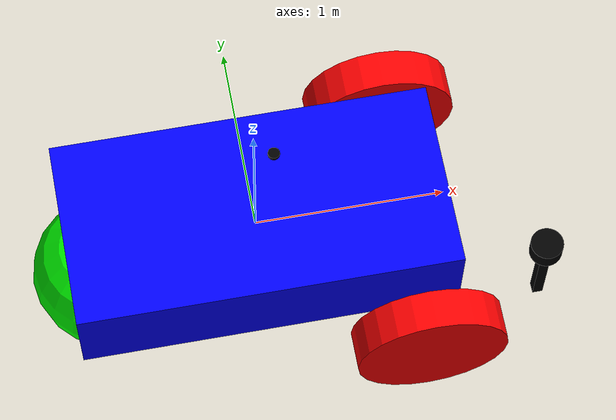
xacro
<?xml version="1.0"?>
<robot xmlns:xacro="http://www.ros.org/wiki/xacro"  name="robot">
    <material name="black">
         <color rgba="0 0 0 1"/>
    </material>

    <xacro:arg name="use_ros2_control" default="true"/>

    <xacro:include filename="building_robot.xacro" />

    <xacro:include filename="lidar.xacro" />
    <xacro:include filename="camera.xacro" />
    <xacro:include filename="gps.xacro" />

    <xacro:if value="$(arg use_ros2_control)">
        <xacro:include filename="ros2_control.xacro" />
    </xacro:if>
    <xacro:unless value="$(arg use_ros2_control)">
        <xacro:include filename="Gazebo_control.xacro" />
    </xacro:unless>

</robot>

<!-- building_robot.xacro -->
<robot xmlns:xacro="http://www.ros.org/wiki/xacro">

  <!-- Chassis -->
  <link name="chassis">
    <inertial>
      <mass value="1.14395"/>
      <inertia ixx="0.095329" ixy="0.0" ixz="0.0" iyy="0.381317" iyz="0.0" izz="0.476646"/>
    </inertial>
    <visual>
      <geometry>
        <box size="2 1 0.5"/>
      </geometry>
      <material name="blue">
        <color rgba="0 0 1 1"/>
      </material>
    </visual>
    <collision>
      <geometry>
        <box size="2 1 0.5"/>
      </geometry>
    </collision>
  </link>

  <!-- Left Wheel -->
  <link name="left_wheel">
    <inertial>
      <mass value="1"/>
      <inertia ixx="0.043333" ixy="0" ixz="0" iyy="0.043333" iyz="0" izz="0.08"/>
    </inertial>
    <visual>
      <geometry>
        <cylinder radius="0.4" length="0.2"/>
      </geometry>
      <material name="red">
        <color rgba="1 0 0 1"/>
      </material>
    </visual>
    <collision>
      <geometry>
        <cylinder radius="0.4" length="0.2"/>
      </geometry>
      <material name="red">
        <color rgba="1 0 0 1"/>
      </material>
    </collision>
  </link>

  <!-- Right Wheel -->
  <link name="right_wheel">
    <inertial>
      <mass value="1"/>
      <inertia ixx="0.043333" ixy="0" ixz="0" iyy="0.043333" iyz="0" izz="0.08"/>
    </inertial>
    <visual>
      <geometry>
        <cylinder radius="0.4" length="0.2"/>
      </geometry>
      <material name="red">
        <color rgba="1 0 0 1"/>
      </material>
    </visual>
    <collision>
      <geometry>
        <cylinder radius="0.4" length="0.2"/>
      </geometry>
      <material name="red">
        <color rgba="1 0 0 1"/>
      </material>
    </collision>
  </link>

  <!-- Caster Wheel -->
  <link name="caster">
    <inertial>
      <mass value="1"/>
      <inertia ixx="0.016" ixy="0" ixz="0" iyy="0.016" iyz="0" izz="0.016"/>
    </inertial>
    <visual>
      <geometry>
        <sphere radius="0.4"/>
      </geometry>
      <material name="green">
        <color rgba="0 1 0 1"/>
      </material>
    </visual>
    <collision>
      <geometry>
        <sphere radius="0.2"/>
      </geometry>
    </collision>
  </link>

  <!-- Joints -->
  <joint name="left_wheel_joint" type="continuous">
    <parent link="chassis"/>
    <child link="left_wheel"/>
    <origin xyz="0.8 0.7 -0.25" rpy="1.57 0 0"/>
    <axis xyz="0 0 1"/>
  </joint>

  <joint name="right_wheel_joint" type="continuous">
    <parent link="chassis"/>
    <child link="right_wheel"/>
    <origin xyz="0.8 -0.7 -0.25" rpy="-1.57 0 0"/>
    <axis xyz="0 0 1"/>
  </joint>

  <joint name="caster_joint" type="fixed">
    <parent link="chassis"/>
    <child link="caster"/>
    <origin xyz="-0.8 0 -0.3" rpy="0 0 0"/>
  </joint>

</robot>

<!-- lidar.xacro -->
<robot xmlns:xacro="http://www.ros.org/wiki/xacro" >
  <xacro:include filename="$(find first_robot)/description/Inertial.xacro"/>

    <joint name="laser_joint" type="fixed">
        <parent link="chassis"/>
        <child link="laser_frame"/>
        <origin xyz="0.122 0 0.212" rpy="0 0 0"/>
    </joint>

    <link name="laser_frame">
        <visual>
            <geometry>
                <cylinder radius="0.05" length="0.04"/>
            </geometry>
            <material name="black"/>
        </visual>
        <visual>
            <origin xyz="0 0 -0.05"/>
            <geometry>
                <cylinder radius="0.01" length="0.1"/>
            </geometry>
            <material name="black"/>
        </visual>
        <collision>
            <geometry>
                <cylinder radius="0.05" length="0.04"/>
            </geometry>
        </collision>
        <xacro:inertial_cylinder mass="0.1" length="0.04" radius="0.05">
            <origin xyz="0 0 0" rpy="0 0 0"/>
        </xacro:inertial_cylinder>
    </link>

    <gazebo reference="laser_frame">
        <material>Gazebo/Black</material>

        <sensor name='laser' type='gpu_lidar'>
            <pose>0 0 0 0 0 0</pose>
            <topic>scan</topic>
            <gz_frame_id>laser_frame</gz_frame_id>
            <update_rate>10</update_rate>
            <lidar>
              <scan>
                <horizontal>
                  <samples>640</samples>
                  <resolution>1</resolution>
                  <min_angle>-1.396263</min_angle>
                  <max_angle>1.396263</max_angle>
                </horizontal>
                <vertical>
                  <samples>1</samples>
                  <resolution>1</resolution>
                  <min_angle>0.0</min_angle>
                  <max_angle>0.0</max_angle>
                </vertical>
              </scan>
              <range>
                <min>0.08</min>
                <max>10.0</max>
                <resolution>0.01</resolution>
              </range>
            </lidar>
            <visualize>true</visualize>
          </sensor>
    </gazebo>

</robot>

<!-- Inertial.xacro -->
<robot xmlns:xacro="http://www.ros.org/wiki/xacro">

  <!-- Inertie d'une sphère -->
  <xacro:macro name="inertial_sphere" params="mass radius *origin">
    <inertial>
      <xacro:insert_block name="origin" />
      <mass value="${mass}"/>
      <inertia
        ixx="${(2.0/5.0) * mass * (radius * radius)}"
        iyy="${(2.0/5.0) * mass * (radius * radius)}"
        izz="${(2.0/5.0) * mass * (radius * radius)}"
        ixy="0.0" ixz="0.0" iyz="0.0"/>
    </inertial>
  </xacro:macro>

  <!-- Inertie d'un parallélépipède -->
  <xacro:macro name="inertial_box" params="mass x y z *origin">
    <inertial>
      <xacro:insert_block name="origin" />
      <mass value="${mass}"/>
      <inertia
        ixx="${(1.0/12.0) * mass * (y*y + z*z)}"
        iyy="${(1.0/12.0) * mass * (x*x + z*z)}"
        izz="${(1.0/12.0) * mass * (x*x + y*y)}"
        ixy="0.0" ixz="0.0" iyz="0.0"/>
    </inertial>
  </xacro:macro>

  <!-- Inertie d'un cylindre -->
  <xacro:macro name="inertial_cylinder" params="mass length radius *origin">
    <inertial>
      <xacro:insert_block name="origin" />
      <mass value="${mass}"/>
      <inertia
        ixx="${(1.0/12.0) * mass * (3*radius*radius + length*length)}"
        iyy="${(1.0/12.0) * mass * (3*radius*radius + length*length)}"
        izz="${0.5 * mass * radius * radius}"
        ixy="0.0" ixz="0.0" iyz="0.0"/>
    </inertial>
  </xacro:macro>

</robot>

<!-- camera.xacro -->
<robot xmlns:xacro="http://www.ros.org/wiki/xacro" >

    <joint name="camera_joint" type="fixed">
        <parent link="chassis"/>
        <child link="camera_link"/>
        <origin xyz="1.3 -0.75 0.6" rpy="0 0 0"/>
    </joint>

    <link name="camera_link">
        <visual>
            <geometry>
                <box size="0.050 0.050 0.5"/>
            </geometry>
            <material name="black"/>
        </visual>
        <visual>
            <origin xyz="0 0 0.25"/>
            <geometry>
                <cylinder radius="0.08" length="0.09"/>
            </geometry>
            <material name="black"/>
        </visual>
    </link>

    <joint name="camera_optical_joint" type="fixed">
        <parent link="camera_link"/>
        <child link="camera_link_optical"/>
        <origin xyz="0 0 0" rpy="${-pi/2} 0 ${-pi/2}"/>
    </joint>

    <link name="camera_link_optical"></link>

    <gazebo reference="camera_link">
        <material>Gazebo/Black</material>

        <sensor name="camera" type="camera">
            <pose> 0 0 0 0 0 0 </pose>
            <visualize>true</visualize>
            <update_rate>10</update_rate>
            <camera>
                <camera_info_topic>camera/camera_info</camera_info_topic>
                <horizontal_fov>1.089</horizontal_fov>
                <image>
                    <format>R8G8B8</format>
                    <width>640</width>
                    <height>480</height>
                </image>
                <clip>
                    <near>0.05</near>
                    <far>8.0</far>
                </clip>
            </camera>
            <topic>camera/image_raw</topic>
            <gz_frame_id>camera_link_optical</gz_frame_id>

        </sensor>
    </gazebo>

</robot>

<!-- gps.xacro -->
<robot xmlns:xacro="http://www.ros.org/wiki/xacro">

  <!-- Joint fixe entre le châssis et le GNSS -->
  <joint name="gnss_joint" type="fixed">
    <parent link="chassis"/>
    <child link="gnss_frame"/>
    <!-- Positionne le GNSS (exemple au-dessus du châssis) -->
    <origin xyz="0.10 0 0.80" rpy="0 0 0"/>
  </joint>

  <!-- Lien du capteur GNSS (petit cylindre pour le visuel) -->
  <link name="gnss_frame">
   <visual>
      <geometry>
        <cylinder radius="0.03" length="0.02"/>
      </geometry>
      <material name="black"/>
    </visual>
    <collision>
      <geometry>
        <cylinder radius="0.03" length="0.02"/>
      </geometry>
    </collision>
    <xacro:inertial_cylinder mass="0.05" length="0.02" radius="0.03">
      <origin xyz="0 0 0" rpy="0 0 0"/>
    </xacro:inertial_cylinder>
  </link>

  <!-- Définition du capteur GNSS pour Gazebo Sim -->
  <gazebo reference="gnss_frame">
    <material>Gazebo/Black</material>

    <!-- Capteur GNSS -->
    <sensor name="gnss" type="navsat">
      <pose>0 0 0 0 0 0</pose>
      <!-- topic côté Gazebo ; tu peux changer -->
      <topic>/gnss/fix</topic>
      <!-- Frame publiée (utile pour le bridge ROS2) -->
      <gz_frame_id>gnss_frame</gz_frame_id>
      <update_rate>10</update_rate>

      <navsat>
        <!-- Modèle de bruit simple ; ajuste à ta convenance -->

        <position_sensing>
          <horizontal>
            <noise type="gaussian">
              <mean>0.0</mean>
              <stddev>0.5</stddev>
            </noise>
          </horizontal>
          <vertical>
            <noise type="gaussian">
              <mean>0.0</mean>
              <stddev>1.0</stddev>
            </noise>
          </vertical>
        </position_sensing>
        <velocity_sensing>
          <noise type="gaussian">
            <mean>0.0</mean>
            <stddev>0.1</stddev>        <!-- optionnel -->
          </noise>
        </velocity_sensing>
      </navsat>

      <!-- Affichage dans l’UI de Gazebo (facultatif) -->
      <visualize>true</visualize>
    </sensor>
  </gazebo>

</robot>
